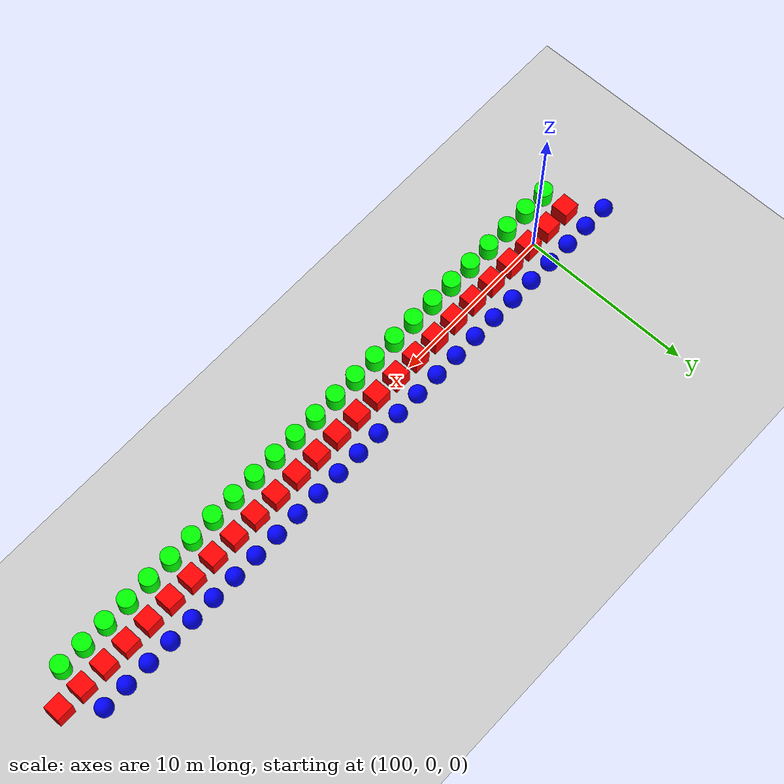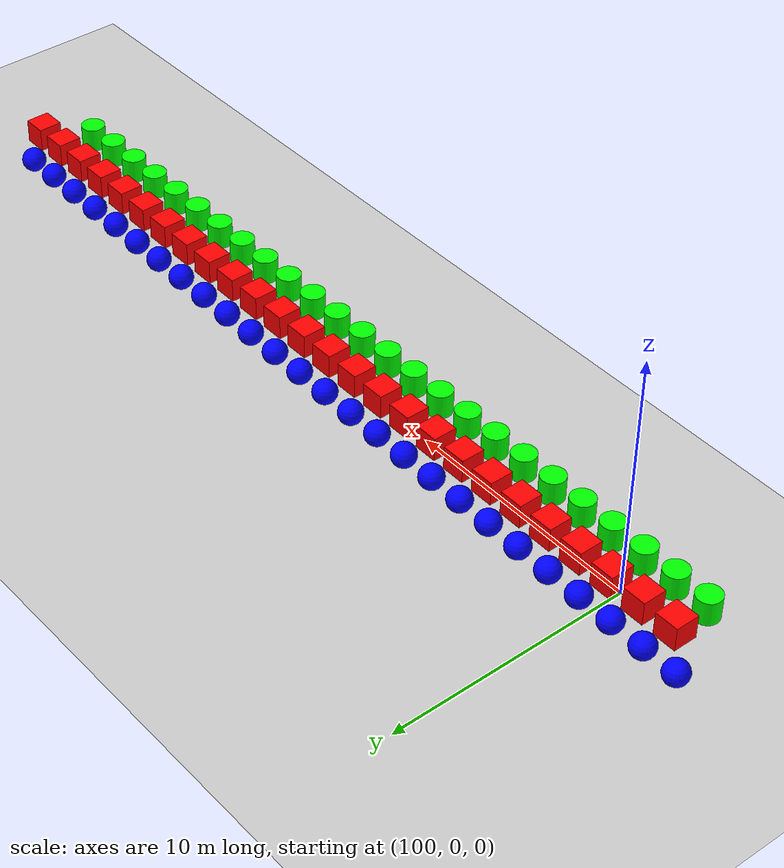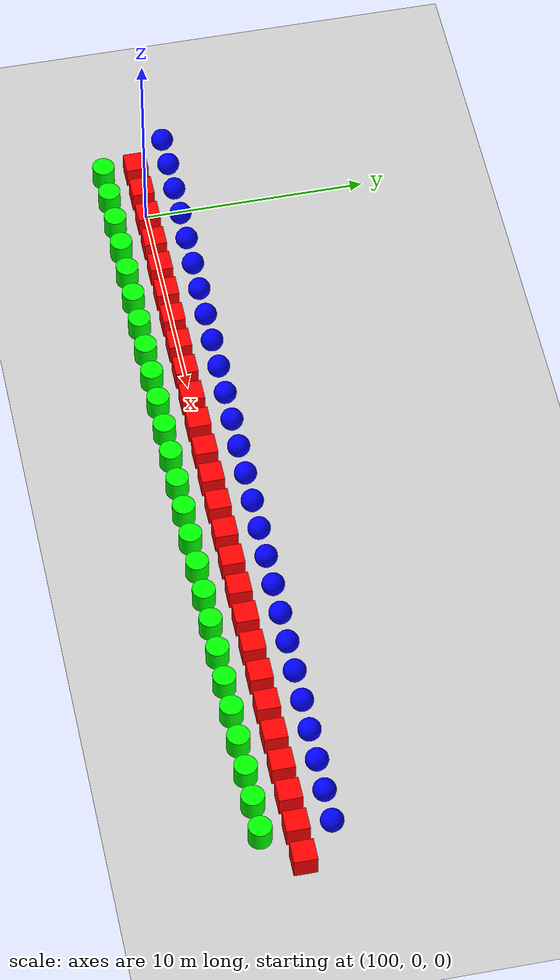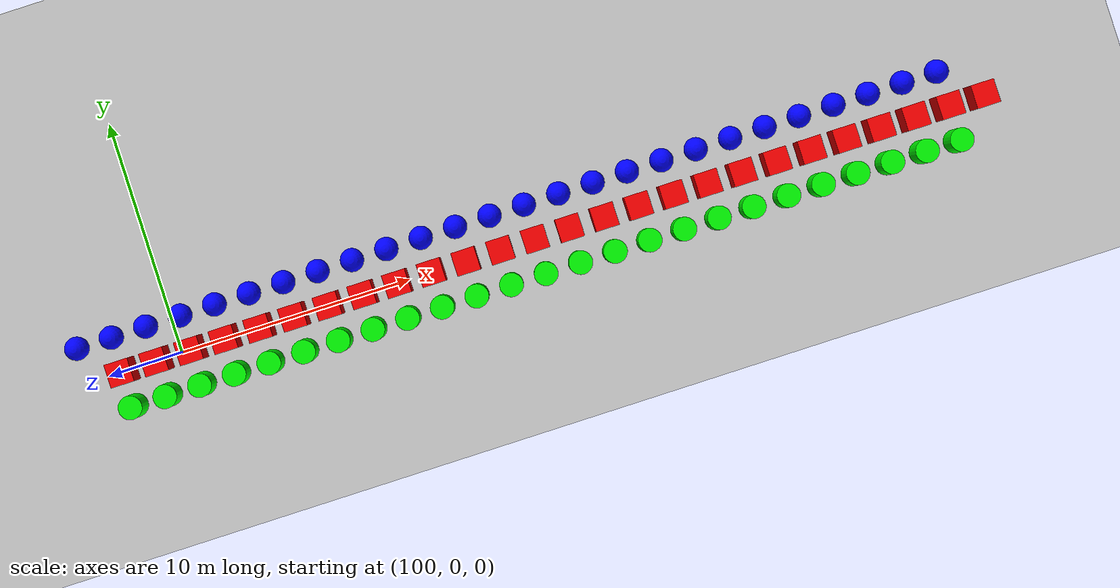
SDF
<sdf version="1.6">
 <world name="shapes">
  <model name="ground_plane">
   <static>true</static>
   <link name="link">
    <collision name="collision">
     <geometry><plane><normal>0 0 1</normal><size>100 100</size></plane></geometry>
    </collision>
    <visual name="visual">
     <geometry><plane><normal>0 0 1</normal><size>100 100</size></plane></geometry>
     <material>
      <ambient>0.8 0.8 0.8 1</ambient>
      <diffuse>0.8 0.8 0.8 1</diffuse>
      <specular>0.8 0.8 0.8 1</specular>
     </material>
    </visual>
   </link>
  </model>
  <model name="sphere_564">
   <static>false</static>
   <pose>96.0 1.5 0.5 0 0 0</pose>
   <link name="sphere_link">
    <inertial>
     <inertia><ixx>3</ixx><ixy>0</ixy><ixz>0</ixz><iyy>3</iyy><iyz>0</iyz><izz>3</izz></inertia>
     <mass>3.0</mass>
    </inertial>
    <collision name="sphere_collision"><geometry><sphere><radius>0.5</radius></sphere></geometry></collision>
    <visual name="sphere_visual">
     <geometry><sphere><radius>0.5</radius></sphere></geometry>
     <material><ambient>0 0 1 1</ambient><diffuse>0 0 1 1</diffuse><specular>0 0 1 1</specular></material>
    </visual>
   </link>
  </model>
  <model name="box_565">
   <static>false</static>
   <pose>97.5 0 0.5 0 0 0</pose>
   <link name="box_link">
    <inertial>
     <inertia><ixx>1</ixx><ixy>0</ixy><ixz>0</ixz><iyy>1</iyy><iyz>0</iyz><izz>1</izz></inertia>
     <mass>1.0</mass>
    </inertial>
    <collision name="box_collision"><geometry><box><size>1 1 1</size></box></geometry></collision>
    <visual name="box_visual">
     <geometry><box><size>1 1 1</size></box></geometry>
     <material><ambient>1 0 0 1</ambient><diffuse>1 0 0 1</diffuse><specular>1 0 0 1</specular></material>
    </visual>
   </link>
  </model>
  <model name="cylinder_565">
   <static>false</static>
   <pose>97.5 -1.5 0.5 0 0 0</pose>
   <link name="cylinder_link">
    <inertial>
     <inertia><ixx>2</ixx><ixy>0</ixy><ixz>0</ixz><iyy>2</iyy><iyz>0</iyz><izz>2</izz></inertia>
     <mass>2.0</mass>
    </inertial>
    <collision name="cylinder_collision">
     <geometry><cylinder><radius>0.5</radius><length>1.0</length></cylinder></geometry>
    </collision>
    <visual name="cylinder_visual">
     <geometry><cylinder><radius>0.5</radius><length>1.0</length></cylinder></geometry>
     <material><ambient>0 1 0 1</ambient><diffuse>0 1 0 1</diffuse><specular>0 1 0 1</specular></material>
    </visual>
   </link>
  </model>
  <model name="sphere_565">
   <static>false</static>
   <pose>97.5 1.5 0.5 0 0 0</pose>
   <link name="sphere_link">
    <inertial>
     <inertia><ixx>3</ixx><ixy>0</ixy><ixz>0</ixz><iyy>3</iyy><iyz>0</iyz><izz>3</izz></inertia>
     <mass>3.0</mass>
    </inertial>
    <collision name="sphere_collision"><geometry><sphere><radius>0.5</radius></sphere></geometry></collision>
    <visual name="sphere_visual">
     <geometry><sphere><radius>0.5</radius></sphere></geometry>
     <material><ambient>0 0 1 1</ambient><diffuse>0 0 1 1</diffuse><specular>0 0 1 1</specular></material>
    </visual>
   </link>
  </model>
  <model name="box_566">
   <static>false</static>
   <pose>99.0 0 0.5 0 0 0</pose>
   <link name="box_link">
    <inertial>
     <inertia><ixx>1</ixx><ixy>0</ixy><ixz>0</ixz><iyy>1</iyy><iyz>0</iyz><izz>1</izz></inertia>
     <mass>1.0</mass>
    </inertial>
    <collision name="box_collision"><geometry><box><size>1 1 1</size></box></geometry></collision>
    <visual name="box_visual">
     <geometry><box><size>1 1 1</size></box></geometry>
     <material><ambient>1 0 0 1</ambient><diffuse>1 0 0 1</diffuse><specular>1 0 0 1</specular></material>
    </visual>
   </link>
  </model>
  <model name="cylinder_566">
   <static>false</static>
   <pose>99.0 -1.5 0.5 0 0 0</pose>
   <link name="cylinder_link">
    <inertial>
     <inertia><ixx>2</ixx><ixy>0</ixy><ixz>0</ixz><iyy>2</iyy><iyz>0</iyz><izz>2</izz></inertia>
     <mass>2.0</mass>
    </inertial>
    <collision name="cylinder_collision">
     <geometry><cylinder><radius>0.5</radius><length>1.0</length></cylinder></geometry>
    </collision>
    <visual name="cylinder_visual">
     <geometry><cylinder><radius>0.5</radius><length>1.0</length></cylinder></geometry>
     <material><ambient>0 1 0 1</ambient><diffuse>0 1 0 1</diffuse><specular>0 1 0 1</specular></material>
    </visual>
   </link>
  </model>
  <model name="sphere_566">
   <static>false</static>
   <pose>99.0 1.5 0.5 0 0 0</pose>
   <link name="sphere_link">
    <inertial>
     <inertia><ixx>3</ixx><ixy>0</ixy><ixz>0</ixz><iyy>3</iyy><iyz>0</iyz><izz>3</izz></inertia>
     <mass>3.0</mass>
    </inertial>
    <collision name="sphere_collision"><geometry><sphere><radius>0.5</radius></sphere></geometry></collision>
    <visual name="sphere_visual">
     <geometry><sphere><radius>0.5</radius></sphere></geometry>
     <material><ambient>0 0 1 1</ambient><diffuse>0 0 1 1</diffuse><specular>0 0 1 1</specular></material>
    </visual>
   </link>
  </model>
  <model name="box_567">
   <static>false</static>
   <pose>100.5 0 0.5 0 0 0</pose>
   <link name="box_link">
    <inertial>
     <inertia><ixx>1</ixx><ixy>0</ixy><ixz>0</ixz><iyy>1</iyy><iyz>0</iyz><izz>1</izz></inertia>
     <mass>1.0</mass>
    </inertial>
    <collision name="box_collision"><geometry><box><size>1 1 1</size></box></geometry></collision>
    <visual name="box_visual">
     <geometry><box><size>1 1 1</size></box></geometry>
     <material><ambient>1 0 0 1</ambient><diffuse>1 0 0 1</diffuse><specular>1 0 0 1</specular></material>
    </visual>
   </link>
  </model>
  <model name="cylinder_567">
   <static>false</static>
   <pose>100.5 -1.5 0.5 0 0 0</pose>
   <link name="cylinder_link">
    <inertial>
     <inertia><ixx>2</ixx><ixy>0</ixy><ixz>0</ixz><iyy>2</iyy><iyz>0</iyz><izz>2</izz></inertia>
     <mass>2.0</mass>
    </inertial>
    <collision name="cylinder_collision">
     <geometry><cylinder><radius>0.5</radius><length>1.0</length></cylinder></geometry>
    </collision>
    <visual name="cylinder_visual">
     <geometry><cylinder><radius>0.5</radius><length>1.0</length></cylinder></geometry>
     <material><ambient>0 1 0 1</ambient><diffuse>0 1 0 1</diffuse><specular>0 1 0 1</specular></material>
    </visual>
   </link>
  </model>
  <model name="sphere_567">
   <static>false</static>
   <pose>100.5 1.5 0.5 0 0 0</pose>
   <link name="sphere_link">
    <inertial>
     <inertia><ixx>3</ixx><ixy>0</ixy><ixz>0</ixz><iyy>3</iyy><iyz>0</iyz><izz>3</izz></inertia>
     <mass>3.0</mass>
    </inertial>
    <collision name="sphere_collision"><geometry><sphere><radius>0.5</radius></sphere></geometry></collision>
    <visual name="sphere_visual">
     <geometry><sphere><radius>0.5</radius></sphere></geometry>
     <material><ambient>0 0 1 1</ambient><diffuse>0 0 1 1</diffuse><specular>0 0 1 1</specular></material>
    </visual>
   </link>
  </model>
  <model name="box_568">
   <static>false</static>
   <pose>102.0 0 0.5 0 0 0</pose>
   <link name="box_link">
    <inertial>
     <inertia><ixx>1</ixx><ixy>0</ixy><ixz>0</ixz><iyy>1</iyy><iyz>0</iyz><izz>1</izz></inertia>
     <mass>1.0</mass>
    </inertial>
    <collision name="box_collision"><geometry><box><size>1 1 1</size></box></geometry></collision>
    <visual name="box_visual">
     <geometry><box><size>1 1 1</size></box></geometry>
     <material><ambient>1 0 0 1</ambient><diffuse>1 0 0 1</diffuse><specular>1 0 0 1</specular></material>
    </visual>
   </link>
  </model>
  <model name="cylinder_568">
   <static>false</static>
   <pose>102.0 -1.5 0.5 0 0 0</pose>
   <link name="cylinder_link">
    <inertial>
     <inertia><ixx>2</ixx><ixy>0</ixy><ixz>0</ixz><iyy>2</iyy><iyz>0</iyz><izz>2</izz></inertia>
     <mass>2.0</mass>
    </inertial>
    <collision name="cylinder_collision">
     <geometry><cylinder><radius>0.5</radius><length>1.0</length></cylinder></geometry>
    </collision>
    <visual name="cylinder_visual">
     <geometry><cylinder><radius>0.5</radius><length>1.0</length></cylinder></geometry>
     <material><ambient>0 1 0 1</ambient><diffuse>0 1 0 1</diffuse><specular>0 1 0 1</specular></material>
    </visual>
   </link>
  </model>
  <model name="sphere_568">
   <static>false</static>
   <pose>102.0 1.5 0.5 0 0 0</pose>
   <link name="sphere_link">
    <inertial>
     <inertia><ixx>3</ixx><ixy>0</ixy><ixz>0</ixz><iyy>3</iyy><iyz>0</iyz><izz>3</izz></inertia>
     <mass>3.0</mass>
    </inertial>
    <collision name="sphere_collision"><geometry><sphere><radius>0.5</radius></sphere></geometry></collision>
    <visual name="sphere_visual">
     <geometry><sphere><radius>0.5</radius></sphere></geometry>
     <material><ambient>0 0 1 1</ambient><diffuse>0 0 1 1</diffuse><specular>0 0 1 1</specular></material>
    </visual>
   </link>
  </model>
  <model name="box_569">
   <static>false</static>
   <pose>103.5 0 0.5 0 0 0</pose>
   <link name="box_link">
    <inertial>
     <inertia><ixx>1</ixx><ixy>0</ixy><ixz>0</ixz><iyy>1</iyy><iyz>0</iyz><izz>1</izz></inertia>
     <mass>1.0</mass>
    </inertial>
    <collision name="box_collision"><geometry><box><size>1 1 1</size></box></geometry></collision>
    <visual name="box_visual">
     <geometry><box><size>1 1 1</size></box></geometry>
     <material><ambient>1 0 0 1</ambient><diffuse>1 0 0 1</diffuse><specular>1 0 0 1</specular></material>
    </visual>
   </link>
  </model>
  <model name="cylinder_569">
   <static>false</static>
   <pose>103.5 -1.5 0.5 0 0 0</pose>
   <link name="cylinder_link">
    <inertial>
     <inertia><ixx>2</ixx><ixy>0</ixy><ixz>0</ixz><iyy>2</iyy><iyz>0</iyz><izz>2</izz></inertia>
     <mass>2.0</mass>
    </inertial>
    <collision name="cylinder_collision">
     <geometry><cylinder><radius>0.5</radius><length>1.0</length></cylinder></geometry>
    </collision>
    <visual name="cylinder_visual">
     <geometry><cylinder><radius>0.5</radius><length>1.0</length></cylinder></geometry>
     <material><ambient>0 1 0 1</ambient><diffuse>0 1 0 1</diffuse><specular>0 1 0 1</specular></material>
    </visual>
   </link>
  </model>
  <model name="sphere_569">
   <static>false</static>
   <pose>103.5 1.5 0.5 0 0 0</pose>
   <link name="sphere_link">
    <inertial>
     <inertia><ixx>3</ixx><ixy>0</ixy><ixz>0</ixz><iyy>3</iyy><iyz>0</iyz><izz>3</izz></inertia>
     <mass>3.0</mass>
    </inertial>
    <collision name="sphere_collision"><geometry><sphere><radius>0.5</radius></sphere></geometry></collision>
    <visual name="sphere_visual">
     <geometry><sphere><radius>0.5</radius></sphere></geometry>
     <material><ambient>0 0 1 1</ambient><diffuse>0 0 1 1</diffuse><specular>0 0 1 1</specular></material>
    </visual>
   </link>
  </model>
  <model name="box_570">
   <static>false</static>
   <pose>105.0 0 0.5 0 0 0</pose>
   <link name="box_link">
    <inertial>
     <inertia><ixx>1</ixx><ixy>0</ixy><ixz>0</ixz><iyy>1</iyy><iyz>0</iyz><izz>1</izz></inertia>
     <mass>1.0</mass>
    </inertial>
    <collision name="box_collision"><geometry><box><size>1 1 1</size></box></geometry></collision>
    <visual name="box_visual">
     <geometry><box><size>1 1 1</size></box></geometry>
     <material><ambient>1 0 0 1</ambient><diffuse>1 0 0 1</diffuse><specular>1 0 0 1</specular></material>
    </visual>
   </link>
  </model>
  <model name="cylinder_570">
   <static>false</static>
   <pose>105.0 -1.5 0.5 0 0 0</pose>
   <link name="cylinder_link">
    <inertial>
     <inertia><ixx>2</ixx><ixy>0</ixy><ixz>0</ixz><iyy>2</iyy><iyz>0</iyz><izz>2</izz></inertia>
     <mass>2.0</mass>
    </inertial>
    <collision name="cylinder_collision">
     <geometry><cylinder><radius>0.5</radius><length>1.0</length></cylinder></geometry>
    </collision>
    <visual name="cylinder_visual">
     <geometry><cylinder><radius>0.5</radius><length>1.0</length></cylinder></geometry>
     <material><ambient>0 1 0 1</ambient><diffuse>0 1 0 1</diffuse><specular>0 1 0 1</specular></material>
    </visual>
   </link>
  </model>
  <model name="sphere_570">
   <static>false</static>
   <pose>105.0 1.5 0.5 0 0 0</pose>
   <link name="sphere_link">
    <inertial>
     <inertia><ixx>3</ixx><ixy>0</ixy><ixz>0</ixz><iyy>3</iyy><iyz>0</iyz><izz>3</izz></inertia>
     <mass>3.0</mass>
    </inertial>
    <collision name="sphere_collision"><geometry><sphere><radius>0.5</radius></sphere></geometry></collision>
    <visual name="sphere_visual">
     <geometry><sphere><radius>0.5</radius></sphere></geometry>
     <material><ambient>0 0 1 1</ambient><diffuse>0 0 1 1</diffuse><specular>0 0 1 1</specular></material>
    </visual>
   </link>
  </model>
  <model name="box_571">
   <static>false</static>
   <pose>106.5 0 0.5 0 0 0</pose>
   <link name="box_link">
    <inertial>
     <inertia><ixx>1</ixx><ixy>0</ixy><ixz>0</ixz><iyy>1</iyy><iyz>0</iyz><izz>1</izz></inertia>
     <mass>1.0</mass>
    </inertial>
    <collision name="box_collision"><geometry><box><size>1 1 1</size></box></geometry></collision>
    <visual name="box_visual">
     <geometry><box><size>1 1 1</size></box></geometry>
     <material><ambient>1 0 0 1</ambient><diffuse>1 0 0 1</diffuse><specular>1 0 0 1</specular></material>
    </visual>
   </link>
  </model>
  <model name="cylinder_571">
   <static>false</static>
   <pose>106.5 -1.5 0.5 0 0 0</pose>
   <link name="cylinder_link">
    <inertial>
     <inertia><ixx>2</ixx><ixy>0</ixy><ixz>0</ixz><iyy>2</iyy><iyz>0</iyz><izz>2</izz></inertia>
     <mass>2.0</mass>
    </inertial>
    <collision name="cylinder_collision">
     <geometry><cylinder><radius>0.5</radius><length>1.0</length></cylinder></geometry>
    </collision>
    <visual name="cylinder_visual">
     <geometry><cylinder><radius>0.5</radius><length>1.0</length></cylinder></geometry>
     <material><ambient>0 1 0 1</ambient><diffuse>0 1 0 1</diffuse><specular>0 1 0 1</specular></material>
    </visual>
   </link>
  </model>
  <model name="sphere_571">
   <static>false</static>
   <pose>106.5 1.5 0.5 0 0 0</pose>
   <link name="sphere_link">
    <inertial>
     <inertia><ixx>3</ixx><ixy>0</ixy><ixz>0</ixz><iyy>3</iyy><iyz>0</iyz><izz>3</izz></inertia>
     <mass>3.0</mass>
    </inertial>
    <collision name="sphere_collision"><geometry><sphere><radius>0.5</radius></sphere></geometry></collision>
    <visual name="sphere_visual">
     <geometry><sphere><radius>0.5</radius></sphere></geometry>
     <material><ambient>0 0 1 1</ambient><diffuse>0 0 1 1</diffuse><specular>0 0 1 1</specular></material>
    </visual>
   </link>
  </model>
  <model name="box_572">
   <static>false</static>
   <pose>108.0 0 0.5 0 0 0</pose>
   <link name="box_link">
    <inertial>
     <inertia><ixx>1</ixx><ixy>0</ixy><ixz>0</ixz><iyy>1</iyy><iyz>0</iyz><izz>1</izz></inertia>
     <mass>1.0</mass>
    </inertial>
    <collision name="box_collision"><geometry><box><size>1 1 1</size></box></geometry></collision>
    <visual name="box_visual">
     <geometry><box><size>1 1 1</size></box></geometry>
     <material><ambient>1 0 0 1</ambient><diffuse>1 0 0 1</diffuse><specular>1 0 0 1</specular></material>
    </visual>
   </link>
  </model>
  <model name="cylinder_572">
   <static>false</static>
   <pose>108.0 -1.5 0.5 0 0 0</pose>
   <link name="cylinder_link">
    <inertial>
     <inertia><ixx>2</ixx><ixy>0</ixy><ixz>0</ixz><iyy>2</iyy><iyz>0</iyz><izz>2</izz></inertia>
     <mass>2.0</mass>
    </inertial>
    <collision name="cylinder_collision">
     <geometry><cylinder><radius>0.5</radius><length>1.0</length></cylinder></geometry>
    </collision>
    <visual name="cylinder_visual">
     <geometry><cylinder><radius>0.5</radius><length>1.0</length></cylinder></geometry>
     <material><ambient>0 1 0 1</ambient><diffuse>0 1 0 1</diffuse><specular>0 1 0 1</specular></material>
    </visual>
   </link>
  </model>
  <model name="sphere_572">
   <static>false</static>
   <pose>108.0 1.5 0.5 0 0 0</pose>
   <link name="sphere_link">
    <inertial>
     <inertia><ixx>3</ixx><ixy>0</ixy><ixz>0</ixz><iyy>3</iyy><iyz>0</iyz><izz>3</izz></inertia>
     <mass>3.0</mass>
    </inertial>
    <collision name="sphere_collision"><geometry><sphere><radius>0.5</radius></sphere></geometry></collision>
    <visual name="sphere_visual">
     <geometry><sphere><radius>0.5</radius></sphere></geometry>
     <material><ambient>0 0 1 1</ambient><diffuse>0 0 1 1</diffuse><specular>0 0 1 1</specular></material>
    </visual>
   </link>
  </model>
  <model name="box_573">
   <static>false</static>
   <pose>109.5 0 0.5 0 0 0</pose>
   <link name="box_link">
    <inertial>
     <inertia><ixx>1</ixx><ixy>0</ixy><ixz>0</ixz><iyy>1</iyy><iyz>0</iyz><izz>1</izz></inertia>
     <mass>1.0</mass>
    </inertial>
    <collision name="box_collision"><geometry><box><size>1 1 1</size></box></geometry></collision>
    <visual name="box_visual">
     <geometry><box><size>1 1 1</size></box></geometry>
     <material><ambient>1 0 0 1</ambient><diffuse>1 0 0 1</diffuse><specular>1 0 0 1</specular></material>
    </visual>
   </link>
  </model>
  <model name="cylinder_573">
   <static>false</static>
   <pose>109.5 -1.5 0.5 0 0 0</pose>
   <link name="cylinder_link">
    <inertial>
     <inertia><ixx>2</ixx><ixy>0</ixy><ixz>0</ixz><iyy>2</iyy><iyz>0</iyz><izz>2</izz></inertia>
     <mass>2.0</mass>
    </inertial>
    <collision name="cylinder_collision">
     <geometry><cylinder><radius>0.5</radius><length>1.0</length></cylinder></geometry>
    </collision>
    <visual name="cylinder_visual">
     <geometry><cylinder><radius>0.5</radius><length>1.0</length></cylinder></geometry>
     <material><ambient>0 1 0 1</ambient><diffuse>0 1 0 1</diffuse><specular>0 1 0 1</specular></material>
    </visual>
   </link>
  </model>
  <model name="sphere_573">
   <static>false</static>
   <pose>109.5 1.5 0.5 0 0 0</pose>
   <link name="sphere_link">
    <inertial>
     <inertia><ixx>3</ixx><ixy>0</ixy><ixz>0</ixz><iyy>3</iyy><iyz>0</iyz><izz>3</izz></inertia>
     <mass>3.0</mass>
    </inertial>
    <collision name="sphere_collision"><geometry><sphere><radius>0.5</radius></sphere></geometry></collision>
    <visual name="sphere_visual">
     <geometry><sphere><radius>0.5</radius></sphere></geometry>
     <material><ambient>0 0 1 1</ambient><diffuse>0 0 1 1</diffuse><specular>0 0 1 1</specular></material>
    </visual>
   </link>
  </model>
  <model name="box_574">
   <static>false</static>
   <pose>111.0 0 0.5 0 0 0</pose>
   <link name="box_link">
    <inertial>
     <inertia><ixx>1</ixx><ixy>0</ixy><ixz>0</ixz><iyy>1</iyy><iyz>0</iyz><izz>1</izz></inertia>
     <mass>1.0</mass>
    </inertial>
    <collision name="box_collision"><geometry><box><size>1 1 1</size></box></geometry></collision>
    <visual name="box_visual">
     <geometry><box><size>1 1 1</size></box></geometry>
     <material><ambient>1 0 0 1</ambient><diffuse>1 0 0 1</diffuse><specular>1 0 0 1</specular></material>
    </visual>
   </link>
  </model>
  <model name="cylinder_574">
   <static>false</static>
   <pose>111.0 -1.5 0.5 0 0 0</pose>
   <link name="cylinder_link">
    <inertial>
     <inertia><ixx>2</ixx><ixy>0</ixy><ixz>0</ixz><iyy>2</iyy><iyz>0</iyz><izz>2</izz></inertia>
     <mass>2.0</mass>
    </inertial>
    <collision name="cylinder_collision">
     <geometry><cylinder><radius>0.5</radius><length>1.0</length></cylinder></geometry>
    </collision>
    <visual name="cylinder_visual">
     <geometry><cylinder><radius>0.5</radius><length>1.0</length></cylinder></geometry>
     <material><ambient>0 1 0 1</ambient><diffuse>0 1 0 1</diffuse><specular>0 1 0 1</specular></material>
    </visual>
   </link>
  </model>
  <model name="sphere_574">
   <static>false</static>
   <pose>111.0 1.5 0.5 0 0 0</pose>
   <link name="sphere_link">
    <inertial>
     <inertia><ixx>3</ixx><ixy>0</ixy><ixz>0</ixz><iyy>3</iyy><iyz>0</iyz><izz>3</izz></inertia>
     <mass>3.0</mass>
    </inertial>
    <collision name="sphere_collision"><geometry><sphere><radius>0.5</radius></sphere></geometry></collision>
    <visual name="sphere_visual">
     <geometry><sphere><radius>0.5</radius></sphere></geometry>
     <material><ambient>0 0 1 1</ambient><diffuse>0 0 1 1</diffuse><specular>0 0 1 1</specular></material>
    </visual>
   </link>
  </model>
  <model name="box_575">
   <static>false</static>
   <pose>112.5 0 0.5 0 0 0</pose>
   <link name="box_link">
    <inertial>
     <inertia><ixx>1</ixx><ixy>0</ixy><ixz>0</ixz><iyy>1</iyy><iyz>0</iyz><izz>1</izz></inertia>
     <mass>1.0</mass>
    </inertial>
    <collision name="box_collision"><geometry><box><size>1 1 1</size></box></geometry></collision>
    <visual name="box_visual">
     <geometry><box><size>1 1 1</size></box></geometry>
     <material><ambient>1 0 0 1</ambient><diffuse>1 0 0 1</diffuse><specular>1 0 0 1</specular></material>
    </visual>
   </link>
  </model>
  <model name="cylinder_575">
   <static>false</static>
   <pose>112.5 -1.5 0.5 0 0 0</pose>
   <link name="cylinder_link">
    <inertial>
     <inertia><ixx>2</ixx><ixy>0</ixy><ixz>0</ixz><iyy>2</iyy><iyz>0</iyz><izz>2</izz></inertia>
     <mass>2.0</mass>
    </inertial>
    <collision name="cylinder_collision">
     <geometry><cylinder><radius>0.5</radius><length>1.0</length></cylinder></geometry>
    </collision>
    <visual name="cylinder_visual">
     <geometry><cylinder><radius>0.5</radius><length>1.0</length></cylinder></geometry>
     <material><ambient>0 1 0 1</ambient><diffuse>0 1 0 1</diffuse><specular>0 1 0 1</specular></material>
    </visual>
   </link>
  </model>
  <model name="sphere_575">
   <static>false</static>
   <pose>112.5 1.5 0.5 0 0 0</pose>
   <link name="sphere_link">
    <inertial>
     <inertia><ixx>3</ixx><ixy>0</ixy><ixz>0</ixz><iyy>3</iyy><iyz>0</iyz><izz>3</izz></inertia>
     <mass>3.0</mass>
    </inertial>
    <collision name="sphere_collision"><geometry><sphere><radius>0.5</radius></sphere></geometry></collision>
    <visual name="sphere_visual">
     <geometry><sphere><radius>0.5</radius></sphere></geometry>
     <material><ambient>0 0 1 1</ambient><diffuse>0 0 1 1</diffuse><specular>0 0 1 1</specular></material>
    </visual>
   </link>
  </model>
  <model name="box_576">
   <static>false</static>
   <pose>114.0 0 0.5 0 0 0</pose>
   <link name="box_link">
    <inertial>
     <inertia><ixx>1</ixx><ixy>0</ixy><ixz>0</ixz><iyy>1</iyy><iyz>0</iyz><izz>1</izz></inertia>
     <mass>1.0</mass>
    </inertial>
    <collision name="box_collision"><geometry><box><size>1 1 1</size></box></geometry></collision>
    <visual name="box_visual">
     <geometry><box><size>1 1 1</size></box></geometry>
     <material><ambient>1 0 0 1</ambient><diffuse>1 0 0 1</diffuse><specular>1 0 0 1</specular></material>
    </visual>
   </link>
  </model>
  <model name="cylinder_576">
   <static>false</static>
   <pose>114.0 -1.5 0.5 0 0 0</pose>
   <link name="cylinder_link">
    <inertial>
     <inertia><ixx>2</ixx><ixy>0</ixy><ixz>0</ixz><iyy>2</iyy><iyz>0</iyz><izz>2</izz></inertia>
     <mass>2.0</mass>
    </inertial>
    <collision name="cylinder_collision">
     <geometry><cylinder><radius>0.5</radius><length>1.0</length></cylinder></geometry>
    </collision>
    <visual name="cylinder_visual">
     <geometry><cylinder><radius>0.5</radius><length>1.0</length></cylinder></geometry>
     <material><ambient>0 1 0 1</ambient><diffuse>0 1 0 1</diffuse><specular>0 1 0 1</specular></material>
    </visual>
   </link>
  </model>
  <model name="sphere_576">
   <static>false</static>
   <pose>114.0 1.5 0.5 0 0 0</pose>
   <link name="sphere_link">
    <inertial>
     <inertia><ixx>3</ixx><ixy>0</ixy><ixz>0</ixz><iyy>3</iyy><iyz>0</iyz><izz>3</izz></inertia>
     <mass>3.0</mass>
    </inertial>
    <collision name="sphere_collision"><geometry><sphere><radius>0.5</radius></sphere></geometry></collision>
    <visual name="sphere_visual">
     <geometry><sphere><radius>0.5</radius></sphere></geometry>
     <material><ambient>0 0 1 1</ambient><diffuse>0 0 1 1</diffuse><specular>0 0 1 1</specular></material>
    </visual>
   </link>
  </model>
  <model name="box_577">
   <static>false</static>
   <pose>115.5 0 0.5 0 0 0</pose>
   <link name="box_link">
    <inertial>
     <inertia><ixx>1</ixx><ixy>0</ixy><ixz>0</ixz><iyy>1</iyy><iyz>0</iyz><izz>1</izz></inertia>
     <mass>1.0</mass>
    </inertial>
    <collision name="box_collision"><geometry><box><size>1 1 1</size></box></geometry></collision>
    <visual name="box_visual">
     <geometry><box><size>1 1 1</size></box></geometry>
     <material><ambient>1 0 0 1</ambient><diffuse>1 0 0 1</diffuse><specular>1 0 0 1</specular></material>
    </visual>
   </link>
  </model>
  <model name="cylinder_577">
   <static>false</static>
   <pose>115.5 -1.5 0.5 0 0 0</pose>
   <link name="cylinder_link">
    <inertial>
     <inertia><ixx>2</ixx><ixy>0</ixy><ixz>0</ixz><iyy>2</iyy><iyz>0</iyz><izz>2</izz></inertia>
     <mass>2.0</mass>
    </inertial>
    <collision name="cylinder_collision">
     <geometry><cylinder><radius>0.5</radius><length>1.0</length></cylinder></geometry>
    </collision>
    <visual name="cylinder_visual">
     <geometry><cylinder><radius>0.5</radius><length>1.0</length></cylinder></geometry>
     <material><ambient>0 1 0 1</ambient><diffuse>0 1 0 1</diffuse><specular>0 1 0 1</specular></material>
    </visual>
   </link>
  </model>
  <model name="sphere_577">
   <static>false</static>
   <pose>115.5 1.5 0.5 0 0 0</pose>
   <link name="sphere_link">
    <inertial>
     <inertia><ixx>3</ixx><ixy>0</ixy><ixz>0</ixz><iyy>3</iyy><iyz>0</iyz><izz>3</izz></inertia>
     <mass>3.0</mass>
    </inertial>
    <collision name="sphere_collision"><geometry><sphere><radius>0.5</radius></sphere></geometry></collision>
    <visual name="sphere_visual">
     <geometry><sphere><radius>0.5</radius></sphere></geometry>
     <material><ambient>0 0 1 1</ambient><diffuse>0 0 1 1</diffuse><specular>0 0 1 1</specular></material>
    </visual>
   </link>
  </model>
  <model name="box_578">
   <static>false</static>
   <pose>117.0 0 0.5 0 0 0</pose>
   <link name="box_link">
    <inertial>
     <inertia><ixx>1</ixx><ixy>0</ixy><ixz>0</ixz><iyy>1</iyy><iyz>0</iyz><izz>1</izz></inertia>
     <mass>1.0</mass>
    </inertial>
    <collision name="box_collision"><geometry><box><size>1 1 1</size></box></geometry></collision>
    <visual name="box_visual">
     <geometry><box><size>1 1 1</size></box></geometry>
     <material><ambient>1 0 0 1</ambient><diffuse>1 0 0 1</diffuse><specular>1 0 0 1</specular></material>
    </visual>
   </link>
  </model>
  <model name="cylinder_578">
   <static>false</static>
   <pose>117.0 -1.5 0.5 0 0 0</pose>
   <link name="cylinder_link">
    <inertial>
     <inertia><ixx>2</ixx><ixy>0</ixy><ixz>0</ixz><iyy>2</iyy><iyz>0</iyz><izz>2</izz></inertia>
     <mass>2.0</mass>
    </inertial>
    <collision name="cylinder_collision">
     <geometry><cylinder><radius>0.5</radius><length>1.0</length></cylinder></geometry>
    </collision>
    <visual name="cylinder_visual">
     <geometry><cylinder><radius>0.5</radius><length>1.0</length></cylinder></geometry>
     <material><ambient>0 1 0 1</ambient><diffuse>0 1 0 1</diffuse><specular>0 1 0 1</specular></material>
    </visual>
   </link>
  </model>
  <model name="sphere_578">
   <static>false</static>
   <pose>117.0 1.5 0.5 0 0 0</pose>
   <link name="sphere_link">
    <inertial>
     <inertia><ixx>3</ixx><ixy>0</ixy><ixz>0</ixz><iyy>3</iyy><iyz>0</iyz><izz>3</izz></inertia>
     <mass>3.0</mass>
    </inertial>
    <collision name="sphere_collision"><geometry><sphere><radius>0.5</radius></sphere></geometry></collision>
    <visual name="sphere_visual">
     <geometry><sphere><radius>0.5</radius></sphere></geometry>
     <material><ambient>0 0 1 1</ambient><diffuse>0 0 1 1</diffuse><specular>0 0 1 1</specular></material>
    </visual>
   </link>
  </model>
  <model name="box_579">
   <static>false</static>
   <pose>118.5 0 0.5 0 0 0</pose>
   <link name="box_link">
    <inertial>
     <inertia><ixx>1</ixx><ixy>0</ixy><ixz>0</ixz><iyy>1</iyy><iyz>0</iyz><izz>1</izz></inertia>
     <mass>1.0</mass>
    </inertial>
    <collision name="box_collision"><geometry><box><size>1 1 1</size></box></geometry></collision>
    <visual name="box_visual">
     <geometry><box><size>1 1 1</size></box></geometry>
     <material><ambient>1 0 0 1</ambient><diffuse>1 0 0 1</diffuse><specular>1 0 0 1</specular></material>
    </visual>
   </link>
  </model>
  <model name="cylinder_579">
   <static>false</static>
   <pose>118.5 -1.5 0.5 0 0 0</pose>
   <link name="cylinder_link">
    <inertial>
     <inertia><ixx>2</ixx><ixy>0</ixy><ixz>0</ixz><iyy>2</iyy><iyz>0</iyz><izz>2</izz></inertia>
     <mass>2.0</mass>
    </inertial>
    <collision name="cylinder_collision">
     <geometry><cylinder><radius>0.5</radius><length>1.0</length></cylinder></geometry>
    </collision>
    <visual name="cylinder_visual">
     <geometry><cylinder><radius>0.5</radius><length>1.0</length></cylinder></geometry>
     <material><ambient>0 1 0 1</ambient><diffuse>0 1 0 1</diffuse><specular>0 1 0 1</specular></material>
    </visual>
   </link>
  </model>
  <model name="sphere_579">
   <static>false</static>
   <pose>118.5 1.5 0.5 0 0 0</pose>
   <link name="sphere_link">
    <inertial>
     <inertia><ixx>3</ixx><ixy>0</ixy><ixz>0</ixz><iyy>3</iyy><iyz>0</iyz><izz>3</izz></inertia>
     <mass>3.0</mass>
    </inertial>
    <collision name="sphere_collision"><geometry><sphere><radius>0.5</radius></sphere></geometry></collision>
    <visual name="sphere_visual">
     <geometry><sphere><radius>0.5</radius></sphere></geometry>
     <material><ambient>0 0 1 1</ambient><diffuse>0 0 1 1</diffuse><specular>0 0 1 1</specular></material>
    </visual>
   </link>
  </model>
  <model name="box_580">
   <static>false</static>
   <pose>120.0 0 0.5 0 0 0</pose>
   <link name="box_link">
    <inertial>
     <inertia><ixx>1</ixx><ixy>0</ixy><ixz>0</ixz><iyy>1</iyy><iyz>0</iyz><izz>1</izz></inertia>
     <mass>1.0</mass>
    </inertial>
    <collision name="box_collision"><geometry><box><size>1 1 1</size></box></geometry></collision>
    <visual name="box_visual">
     <geometry><box><size>1 1 1</size></box></geometry>
     <material><ambient>1 0 0 1</ambient><diffuse>1 0 0 1</diffuse><specular>1 0 0 1</specular></material>
    </visual>
   </link>
  </model>
  <model name="cylinder_580">
   <static>false</static>
   <pose>120.0 -1.5 0.5 0 0 0</pose>
   <link name="cylinder_link">
    <inertial>
     <inertia><ixx>2</ixx><ixy>0</ixy><ixz>0</ixz><iyy>2</iyy><iyz>0</iyz><izz>2</izz></inertia>
     <mass>2.0</mass>
    </inertial>
    <collision name="cylinder_collision">
     <geometry><cylinder><radius>0.5</radius><length>1.0</length></cylinder></geometry>
    </collision>
    <visual name="cylinder_visual">
     <geometry><cylinder><radius>0.5</radius><length>1.0</length></cylinder></geometry>
     <material><ambient>0 1 0 1</ambient><diffuse>0 1 0 1</diffuse><specular>0 1 0 1</specular></material>
    </visual>
   </link>
  </model>
  <model name="sphere_580">
   <static>false</static>
   <pose>120.0 1.5 0.5 0 0 0</pose>
   <link name="sphere_link">
    <inertial>
     <inertia><ixx>3</ixx><ixy>0</ixy><ixz>0</ixz><iyy>3</iyy><iyz>0</iyz><izz>3</izz></inertia>
     <mass>3.0</mass>
    </inertial>
    <collision name="sphere_collision"><geometry><sphere><radius>0.5</radius></sphere></geometry></collision>
    <visual name="sphere_visual">
     <geometry><sphere><radius>0.5</radius></sphere></geometry>
     <material><ambient>0 0 1 1</ambient><diffuse>0 0 1 1</diffuse><specular>0 0 1 1</specular></material>
    </visual>
   </link>
  </model>
  <model name="box_581">
   <static>false</static>
   <pose>121.5 0 0.5 0 0 0</pose>
   <link name="box_link">
    <inertial>
     <inertia><ixx>1</ixx><ixy>0</ixy><ixz>0</ixz><iyy>1</iyy><iyz>0</iyz><izz>1</izz></inertia>
     <mass>1.0</mass>
    </inertial>
    <collision name="box_collision"><geometry><box><size>1 1 1</size></box></geometry></collision>
    <visual name="box_visual">
     <geometry><box><size>1 1 1</size></box></geometry>
     <material><ambient>1 0 0 1</ambient><diffuse>1 0 0 1</diffuse><specular>1 0 0 1</specular></material>
    </visual>
   </link>
  </model>
  <model name="cylinder_581">
   <static>false</static>
   <pose>121.5 -1.5 0.5 0 0 0</pose>
   <link name="cylinder_link">
    <inertial>
     <inertia><ixx>2</ixx><ixy>0</ixy><ixz>0</ixz><iyy>2</iyy><iyz>0</iyz><izz>2</izz></inertia>
     <mass>2.0</mass>
    </inertial>
    <collision name="cylinder_collision">
     <geometry><cylinder><radius>0.5</radius><length>1.0</length></cylinder></geometry>
    </collision>
    <visual name="cylinder_visual">
     <geometry><cylinder><radius>0.5</radius><length>1.0</length></cylinder></geometry>
     <material><ambient>0 1 0 1</ambient><diffuse>0 1 0 1</diffuse><specular>0 1 0 1</specular></material>
    </visual>
   </link>
  </model>
  <model name="sphere_581">
   <static>false</static>
   <pose>121.5 1.5 0.5 0 0 0</pose>
   <link name="sphere_link">
    <inertial>
     <inertia><ixx>3</ixx><ixy>0</ixy><ixz>0</ixz><iyy>3</iyy><iyz>0</iyz><izz>3</izz></inertia>
     <mass>3.0</mass>
    </inertial>
    <collision name="sphere_collision"><geometry><sphere><radius>0.5</radius></sphere></geometry></collision>
    <visual name="sphere_visual">
     <geometry><sphere><radius>0.5</radius></sphere></geometry>
     <material><ambient>0 0 1 1</ambient><diffuse>0 0 1 1</diffuse><specular>0 0 1 1</specular></material>
    </visual>
   </link>
  </model>
  <model name="box_582">
   <static>false</static>
   <pose>123.0 0 0.5 0 0 0</pose>
   <link name="box_link">
    <inertial>
     <inertia><ixx>1</ixx><ixy>0</ixy><ixz>0</ixz><iyy>1</iyy><iyz>0</iyz><izz>1</izz></inertia>
     <mass>1.0</mass>
    </inertial>
    <collision name="box_collision"><geometry><box><size>1 1 1</size></box></geometry></collision>
    <visual name="box_visual">
     <geometry><box><size>1 1 1</size></box></geometry>
     <material><ambient>1 0 0 1</ambient><diffuse>1 0 0 1</diffuse><specular>1 0 0 1</specular></material>
    </visual>
   </link>
  </model>
  <model name="cylinder_582">
   <static>false</static>
   <pose>123.0 -1.5 0.5 0 0 0</pose>
   <link name="cylinder_link">
    <inertial>
     <inertia><ixx>2</ixx><ixy>0</ixy><ixz>0</ixz><iyy>2</iyy><iyz>0</iyz><izz>2</izz></inertia>
     <mass>2.0</mass>
    </inertial>
    <collision name="cylinder_collision">
     <geometry><cylinder><radius>0.5</radius><length>1.0</length></cylinder></geometry>
    </collision>
    <visual name="cylinder_visual">
     <geometry><cylinder><radius>0.5</radius><length>1.0</length></cylinder></geometry>
     <material><ambient>0 1 0 1</ambient><diffuse>0 1 0 1</diffuse><specular>0 1 0 1</specular></material>
    </visual>
   </link>
  </model>
  <model name="sphere_582">
   <static>false</static>
   <pose>123.0 1.5 0.5 0 0 0</pose>
   <link name="sphere_link">
    <inertial>
     <inertia><ixx>3</ixx><ixy>0</ixy><ixz>0</ixz><iyy>3</iyy><iyz>0</iyz><izz>3</izz></inertia>
     <mass>3.0</mass>
    </inertial>
    <collision name="sphere_collision"><geometry><sphere><radius>0.5</radius></sphere></geometry></collision>
    <visual name="sphere_visual">
     <geometry><sphere><radius>0.5</radius></sphere></geometry>
     <material><ambient>0 0 1 1</ambient><diffuse>0 0 1 1</diffuse><specular>0 0 1 1</specular></material>
    </visual>
   </link>
  </model>
  <model name="box_583">
   <static>false</static>
   <pose>124.5 0 0.5 0 0 0</pose>
   <link name="box_link">
    <inertial>
     <inertia><ixx>1</ixx><ixy>0</ixy><ixz>0</ixz><iyy>1</iyy><iyz>0</iyz><izz>1</izz></inertia>
     <mass>1.0</mass>
    </inertial>
    <collision name="box_collision"><geometry><box><size>1 1 1</size></box></geometry></collision>
    <visual name="box_visual">
     <geometry><box><size>1 1 1</size></box></geometry>
     <material><ambient>1 0 0 1</ambient><diffuse>1 0 0 1</diffuse><specular>1 0 0 1</specular></material>
    </visual>
   </link>
  </model>
  <model name="cylinder_583">
   <static>false</static>
   <pose>124.5 -1.5 0.5 0 0 0</pose>
   <link name="cylinder_link">
    <inertial>
     <inertia><ixx>2</ixx><ixy>0</ixy><ixz>0</ixz><iyy>2</iyy><iyz>0</iyz><izz>2</izz></inertia>
     <mass>2.0</mass>
    </inertial>
    <collision name="cylinder_collision">
     <geometry><cylinder><radius>0.5</radius><length>1.0</length></cylinder></geometry>
    </collision>
    <visual name="cylinder_visual">
     <geometry><cylinder><radius>0.5</radius><length>1.0</length></cylinder></geometry>
     <material><ambient>0 1 0 1</ambient><diffuse>0 1 0 1</diffuse><specular>0 1 0 1</specular></material>
    </visual>
   </link>
  </model>
  <model name="sphere_583">
   <static>false</static>
   <pose>124.5 1.5 0.5 0 0 0</pose>
   <link name="sphere_link">
    <inertial>
     <inertia><ixx>3</ixx><ixy>0</ixy><ixz>0</ixz><iyy>3</iyy><iyz>0</iyz><izz>3</izz></inertia>
     <mass>3.0</mass>
    </inertial>
    <collision name="sphere_collision"><geometry><sphere><radius>0.5</radius></sphere></geometry></collision>
    <visual name="sphere_visual">
     <geometry><sphere><radius>0.5</radius></sphere></geometry>
     <material><ambient>0 0 1 1</ambient><diffuse>0 0 1 1</diffuse><specular>0 0 1 1</specular></material>
    </visual>
   </link>
  </model>
  <model name="box_584">
   <static>false</static>
   <pose>126.0 0 0.5 0 0 0</pose>
   <link name="box_link">
    <inertial>
     <inertia><ixx>1</ixx><ixy>0</ixy><ixz>0</ixz><iyy>1</iyy><iyz>0</iyz><izz>1</izz></inertia>
     <mass>1.0</mass>
    </inertial>
    <collision name="box_collision"><geometry><box><size>1 1 1</size></box></geometry></collision>
    <visual name="box_visual">
     <geometry><box><size>1 1 1</size></box></geometry>
     <material><ambient>1 0 0 1</ambient><diffuse>1 0 0 1</diffuse><specular>1 0 0 1</specular></material>
    </visual>
   </link>
  </model>
  <model name="cylinder_584">
   <static>false</static>
   <pose>126.0 -1.5 0.5 0 0 0</pose>
   <link name="cylinder_link">
    <inertial>
     <inertia><ixx>2</ixx><ixy>0</ixy><ixz>0</ixz><iyy>2</iyy><iyz>0</iyz><izz>2</izz></inertia>
     <mass>2.0</mass>
    </inertial>
    <collision name="cylinder_collision">
     <geometry><cylinder><radius>0.5</radius><length>1.0</length></cylinder></geometry>
    </collision>
    <visual name="cylinder_visual">
     <geometry><cylinder><radius>0.5</radius><length>1.0</length></cylinder></geometry>
     <material><ambient>0 1 0 1</ambient><diffuse>0 1 0 1</diffuse><specular>0 1 0 1</specular></material>
    </visual>
   </link>
  </model>
  <model name="sphere_584">
   <static>false</static>
   <pose>126.0 1.5 0.5 0 0 0</pose>
   <link name="sphere_link">
    <inertial>
     <inertia><ixx>3</ixx><ixy>0</ixy><ixz>0</ixz><iyy>3</iyy><iyz>0</iyz><izz>3</izz></inertia>
     <mass>3.0</mass>
    </inertial>
    <collision name="sphere_collision"><geometry><sphere><radius>0.5</radius></sphere></geometry></collision>
    <visual name="sphere_visual">
     <geometry><sphere><radius>0.5</radius></sphere></geometry>
     <material><ambient>0 0 1 1</ambient><diffuse>0 0 1 1</diffuse><specular>0 0 1 1</specular></material>
    </visual>
   </link>
  </model>
  <model name="box_585">
   <static>false</static>
   <pose>127.5 0 0.5 0 0 0</pose>
   <link name="box_link">
    <inertial>
     <inertia><ixx>1</ixx><ixy>0</ixy><ixz>0</ixz><iyy>1</iyy><iyz>0</iyz><izz>1</izz></inertia>
     <mass>1.0</mass>
    </inertial>
    <collision name="box_collision"><geometry><box><size>1 1 1</size></box></geometry></collision>
    <visual name="box_visual">
     <geometry><box><size>1 1 1</size></box></geometry>
     <material><ambient>1 0 0 1</ambient><diffuse>1 0 0 1</diffuse><specular>1 0 0 1</specular></material>
    </visual>
   </link>
  </model>
  <model name="cylinder_585">
   <static>false</static>
   <pose>127.5 -1.5 0.5 0 0 0</pose>
   <link name="cylinder_link">
    <inertial>
     <inertia><ixx>2</ixx><ixy>0</ixy><ixz>0</ixz><iyy>2</iyy><iyz>0</iyz><izz>2</izz></inertia>
     <mass>2.0</mass>
    </inertial>
    <collision name="cylinder_collision">
     <geometry><cylinder><radius>0.5</radius><length>1.0</length></cylinder></geometry>
    </collision>
    <visual name="cylinder_visual">
     <geometry><cylinder><radius>0.5</radius><length>1.0</length></cylinder></geometry>
     <material><ambient>0 1 0 1</ambient><diffuse>0 1 0 1</diffuse><specular>0 1 0 1</specular></material>
    </visual>
   </link>
  </model>
  <model name="sphere_585">
   <static>false</static>
   <pose>127.5 1.5 0.5 0 0 0</pose>
   <link name="sphere_link">
    <inertial>
     <inertia><ixx>3</ixx><ixy>0</ixy><ixz>0</ixz><iyy>3</iyy><iyz>0</iyz><izz>3</izz></inertia>
     <mass>3.0</mass>
    </inertial>
    <collision name="sphere_collision"><geometry><sphere><radius>0.5</radius></sphere></geometry></collision>
    <visual name="sphere_visual">
     <geometry><sphere><radius>0.5</radius></sphere></geometry>
     <material><ambient>0 0 1 1</ambient><diffuse>0 0 1 1</diffuse><specular>0 0 1 1</specular></material>
    </visual>
   </link>
  </model>
  <model name="box_586">
   <static>false</static>
   <pose>129.0 0 0.5 0 0 0</pose>
   <link name="box_link">
    <inertial>
     <inertia><ixx>1</ixx><ixy>0</ixy><ixz>0</ixz><iyy>1</iyy><iyz>0</iyz><izz>1</izz></inertia>
     <mass>1.0</mass>
    </inertial>
    <collision name="box_collision"><geometry><box><size>1 1 1</size></box></geometry></collision>
    <visual name="box_visual">
     <geometry><box><size>1 1 1</size></box></geometry>
     <material><ambient>1 0 0 1</ambient><diffuse>1 0 0 1</diffuse><specular>1 0 0 1</specular></material>
    </visual>
   </link>
  </model>
  <model name="cylinder_586">
   <static>false</static>
   <pose>129.0 -1.5 0.5 0 0 0</pose>
   <link name="cylinder_link">
    <inertial>
     <inertia><ixx>2</ixx><ixy>0</ixy><ixz>0</ixz><iyy>2</iyy><iyz>0</iyz><izz>2</izz></inertia>
     <mass>2.0</mass>
    </inertial>
    <collision name="cylinder_collision">
     <geometry><cylinder><radius>0.5</radius><length>1.0</length></cylinder></geometry>
    </collision>
    <visual name="cylinder_visual">
     <geometry><cylinder><radius>0.5</radius><length>1.0</length></cylinder></geometry>
     <material><ambient>0 1 0 1</ambient><diffuse>0 1 0 1</diffuse><specular>0 1 0 1</specular></material>
    </visual>
   </link>
  </model>
  <model name="sphere_586">
   <static>false</static>
   <pose>129.0 1.5 0.5 0 0 0</pose>
   <link name="sphere_link">
    <inertial>
     <inertia><ixx>3</ixx><ixy>0</ixy><ixz>0</ixz><iyy>3</iyy><iyz>0</iyz><izz>3</izz></inertia>
     <mass>3.0</mass>
    </inertial>
    <collision name="sphere_collision"><geometry><sphere><radius>0.5</radius></sphere></geometry></collision>
    <visual name="sphere_visual">
     <geometry><sphere><radius>0.5</radius></sphere></geometry>
     <material><ambient>0 0 1 1</ambient><diffuse>0 0 1 1</diffuse><specular>0 0 1 1</specular></material>
    </visual>
   </link>
  </model>
  <model name="box_587">
   <static>false</static>
   <pose>130.5 0 0.5 0 0 0</pose>
   <link name="box_link">
    <inertial>
     <inertia><ixx>1</ixx><ixy>0</ixy><ixz>0</ixz><iyy>1</iyy><iyz>0</iyz><izz>1</izz></inertia>
     <mass>1.0</mass>
    </inertial>
    <collision name="box_collision"><geometry><box><size>1 1 1</size></box></geometry></collision>
    <visual name="box_visual">
     <geometry><box><size>1 1 1</size></box></geometry>
     <material><ambient>1 0 0 1</ambient><diffuse>1 0 0 1</diffuse><specular>1 0 0 1</specular></material>
    </visual>
   </link>
  </model>
  <model name="cylinder_587">
   <static>false</static>
   <pose>130.5 -1.5 0.5 0 0 0</pose>
   <link name="cylinder_link">
    <inertial>
     <inertia><ixx>2</ixx><ixy>0</ixy><ixz>0</ixz><iyy>2</iyy><iyz>0</iyz><izz>2</izz></inertia>
     <mass>2.0</mass>
    </inertial>
    <collision name="cylinder_collision">
     <geometry><cylinder><radius>0.5</radius><length>1.0</length></cylinder></geometry>
    </collision>
    <visual name="cylinder_visual">
     <geometry><cylinder><radius>0.5</radius><length>1.0</length></cylinder></geometry>
     <material><ambient>0 1 0 1</ambient><diffuse>0 1 0 1</diffuse><specular>0 1 0 1</specular></material>
    </visual>
   </link>
  </model>
  <model name="sphere_587">
   <static>false</static>
   <pose>130.5 1.5 0.5 0 0 0</pose>
   <link name="sphere_link">
    <inertial>
     <inertia><ixx>3</ixx><ixy>0</ixy><ixz>0</ixz><iyy>3</iyy><iyz>0</iyz><izz>3</izz></inertia>
     <mass>3.0</mass>
    </inertial>
    <collision name="sphere_collision"><geometry><sphere><radius>0.5</radius></sphere></geometry></collision>
    <visual name="sphere_visual">
     <geometry><sphere><radius>0.5</radius></sphere></geometry>
     <material><ambient>0 0 1 1</ambient><diffuse>0 0 1 1</diffuse><specular>0 0 1 1</specular></material>
    </visual>
   </link>
  </model>
  <model name="box_588">
   <static>false</static>
   <pose>132.0 0 0.5 0 0 0</pose>
   <link name="box_link">
    <inertial>
     <inertia><ixx>1</ixx><ixy>0</ixy><ixz>0</ixz><iyy>1</iyy><iyz>0</iyz><izz>1</izz></inertia>
     <mass>1.0</mass>
    </inertial>
    <collision name="box_collision"><geometry><box><size>1 1 1</size></box></geometry></collision>
    <visual name="box_visual">
     <geometry><box><size>1 1 1</size></box></geometry>
     <material><ambient>1 0 0 1</ambient><diffuse>1 0 0 1</diffuse><specular>1 0 0 1</specular></material>
    </visual>
   </link>
  </model>
  <model name="cylinder_588">
   <static>false</static>
   <pose>132.0 -1.5 0.5 0 0 0</pose>
   <link name="cylinder_link">
    <inertial>
     <inertia><ixx>2</ixx><ixy>0</ixy><ixz>0</ixz><iyy>2</iyy><iyz>0</iyz><izz>2</izz></inertia>
     <mass>2.0</mass>
    </inertial>
    <collision name="cylinder_collision">
     <geometry><cylinder><radius>0.5</radius><length>1.0</length></cylinder></geometry>
    </collision>
    <visual name="cylinder_visual">
     <geometry><cylinder><radius>0.5</radius><length>1.0</length></cylinder></geometry>
     <material><ambient>0 1 0 1</ambient><diffuse>0 1 0 1</diffuse><specular>0 1 0 1</specular></material>
    </visual>
   </link>
  </model>
  <model name="sphere_588">
   <static>false</static>
   <pose>132.0 1.5 0.5 0 0 0</pose>
   <link name="sphere_link">
    <inertial>
     <inertia><ixx>3</ixx><ixy>0</ixy><ixz>0</ixz><iyy>3</iyy><iyz>0</iyz><izz>3</izz></inertia>
     <mass>3.0</mass>
    </inertial>
    <collision name="sphere_collision"><geometry><sphere><radius>0.5</radius></sphere></geometry></collision>
    <visual name="sphere_visual">
     <geometry><sphere><radius>0.5</radius></sphere></geometry>
     <material><ambient>0 0 1 1</ambient><diffuse>0 0 1 1</diffuse><specular>0 0 1 1</specular></material>
    </visual>
   </link>
  </model>
  <model name="box_589">
   <static>false</static>
   <pose>133.5 0 0.5 0 0 0</pose>
   <link name="box_link">
    <inertial>
     <inertia><ixx>1</ixx><ixy>0</ixy><ixz>0</ixz><iyy>1</iyy><iyz>0</iyz><izz>1</izz></inertia>
     <mass>1.0</mass>
    </inertial>
    <collision name="box_collision"><geometry><box><size>1 1 1</size></box></geometry></collision>
    <visual name="box_visual">
     <geometry><box><size>1 1 1</size></box></geometry>
     <material><ambient>1 0 0 1</ambient><diffuse>1 0 0 1</diffuse><specular>1 0 0 1</specular></material>
    </visual>
   </link>
  </model>
  <model name="cylinder_589">
   <static>false</static>
   <pose>133.5 -1.5 0.5 0 0 0</pose>
   <link name="cylinder_link">
    <inertial>
     <inertia><ixx>2</ixx><ixy>0</ixy><ixz>0</ixz><iyy>2</iyy><iyz>0</iyz><izz>2</izz></inertia>
     <mass>2.0</mass>
    </inertial>
    <collision name="cylinder_collision">
     <geometry><cylinder><radius>0.5</radius><length>1.0</length></cylinder></geometry>
    </collision>
    <visual name="cylinder_visual">
     <geometry><cylinder><radius>0.5</radius><length>1.0</length></cylinder></geometry>
     <material><ambient>0 1 0 1</ambient><diffuse>0 1 0 1</diffuse><specular>0 1 0 1</specular></material>
    </visual>
   </link>
  </model>
  <model name="sphere_589">
   <static>false</static>
   <pose>133.5 1.5 0.5 0 0 0</pose>
   <link name="sphere_link">
    <inertial>
     <inertia><ixx>3</ixx><ixy>0</ixy><ixz>0</ixz><iyy>3</iyy><iyz>0</iyz><izz>3</izz></inertia>
     <mass>3.0</mass>
    </inertial>
    <collision name="sphere_collision"><geometry><sphere><radius>0.5</radius></sphere></geometry></collision>
    <visual name="sphere_visual">
     <geometry><sphere><radius>0.5</radius></sphere></geometry>
     <material><ambient>0 0 1 1</ambient><diffuse>0 0 1 1</diffuse><specular>0 0 1 1</specular></material>
    </visual>
   </link>
  </model>
  <model name="box_590">
   <static>false</static>
   <pose>135.0 0 0.5 0 0 0</pose>
   <link name="box_link">
    <inertial>
     <inertia><ixx>1</ixx><ixy>0</ixy><ixz>0</ixz><iyy>1</iyy><iyz>0</iyz><izz>1</izz></inertia>
     <mass>1.0</mass>
    </inertial>
    <collision name="box_collision"><geometry><box><size>1 1 1</size></box></geometry></collision>
    <visual name="box_visual">
     <geometry><box><size>1 1 1</size></box></geometry>
     <material><ambient>1 0 0 1</ambient><diffuse>1 0 0 1</diffuse><specular>1 0 0 1</specular></material>
    </visual>
   </link>
  </model>
 </world>
</sdf>
